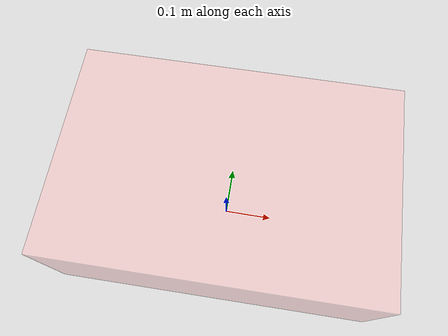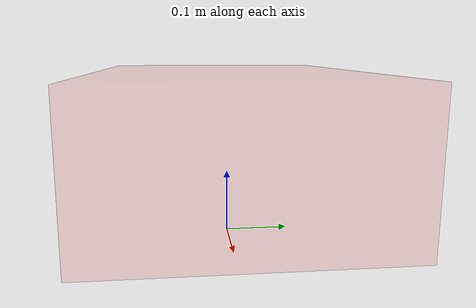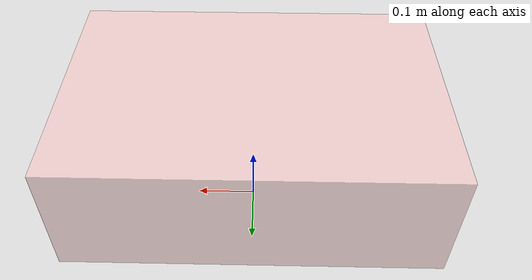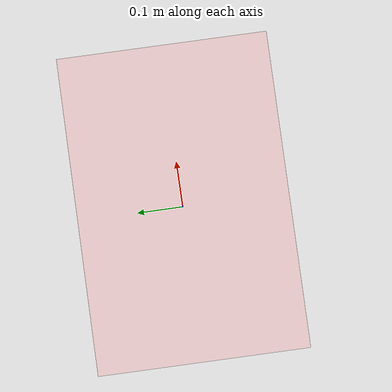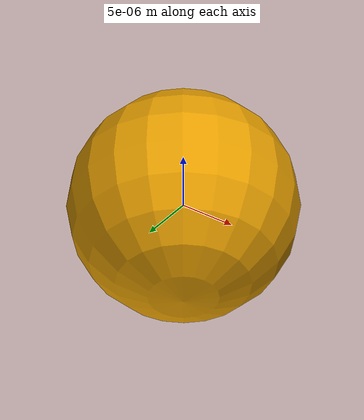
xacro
<robot name="car_base" xmlns:xacro="http://www.ros.org/wiki/xacro">

    <xacro:property name="car_base_x" value="0.6" />
    <xacro:property name="car_base_y" value="0.4" />
    <xacro:property name="car_base_z" value="0.2" />
    <xacro:property name="base_link_m" value="0.5" />
    <xacro:property name="wheel_radius" value="0.0625" />
    <link name="basefootprint">
        <visual>
            <geometry>
                <sphere radius="0.00001" />
            </geometry>
        </visual>
    </link>

    <link name="car_base">
        <visual>
            <geometry>
                <box size="${car_base_x} ${car_base_y} ${car_base_z}" />
            </geometry>
            <origin xyz="0 0 0" rpy="0 0 0" />
            <material name="green">
                <color rgba="1 0.756862 0.756862 0.5" />
            </material>
        </visual>

        <!-- 碰撞参数 -->
        <collision>
            <geometry>
                <box size="${car_base_x} ${car_base_y} ${car_base_z}" />
            </geometry>
            <origin xyz="0.0 0.0 0.0" rpy="0.0 0.0 0.0" />
        </collision>
        <!-- 惯性参数 -->
        <xacro:box_inertial_matrix m="${base_link_m}" l="${car_base_x}" w="${car_base_y}" h="${car_base_z}" />

    </link>

    <joint name="base_footprint2car_base" type="fixed">
        <parent link="basefootprint" />
        <child link="car_base" />
        <origin xyz="0 0 ${car_base_z/2+wheel_radius}" rpy="0 0 0"/>
    </joint>
    <gazebo reference="car_base">
        <material>Gazebo/Yellow</material>
    </gazebo>

</robot>
